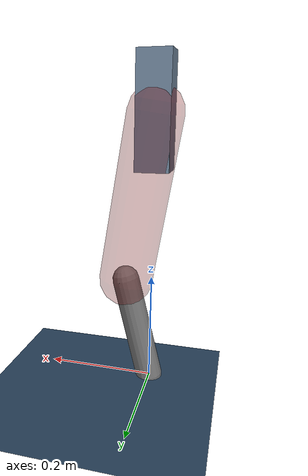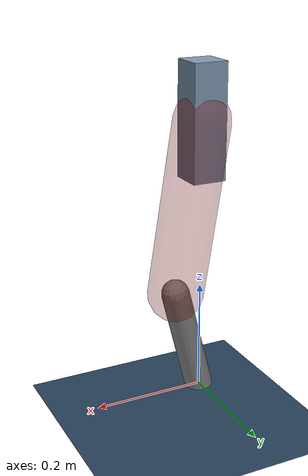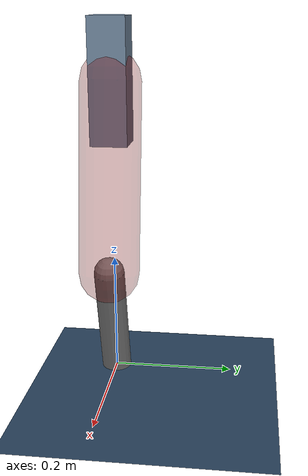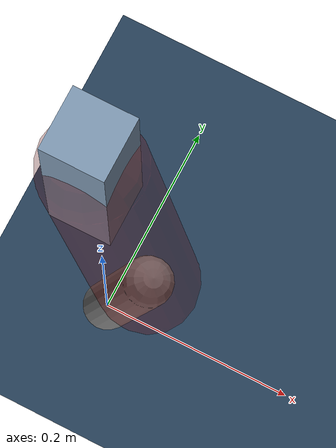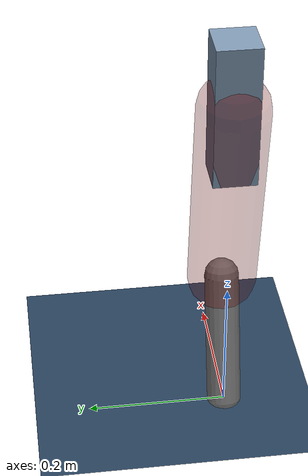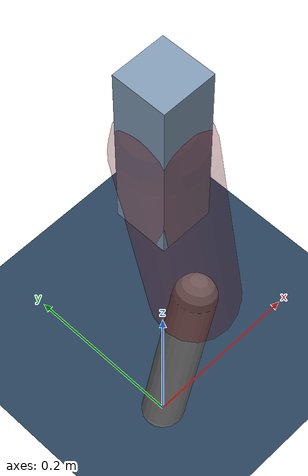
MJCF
<mujoco model="Hopper2D">
	<compiler inertiafromgeom="true" angle="radian" />
	<option timestep="0.001" integrator="implicit" cone="elliptic" solver="Newton" tolerance="1e-10" />

	<default>
		<geom contype="1" conaffinity="1" condim="3" friction="2 0.005 0.0001" solref="0.005 1" />
		<joint limited="true" damping="0.1" />
	</default>

	<asset>
		<texture name="skybox" type="skybox" builtin="gradient" rgb1=".4 .6 .8" rgb2="0 0 0" width="800" height="800" />
		<texture name="grid" type="2d" builtin="checker" rgb1=".1 .2 .3" rgb2=".2 .3 .4" width="300" height="300" mark="edge" markrgb=".2 .3 .4" />
		<material name="ground" texture="grid" texrepeat="1 1" texuniform="true" reflectance="0.1" />
		<material name="leg" rgba="0.5 0.6 0.7 1" />
	</asset>

	<worldbody>

		<geom name="floor" type="plane" size="5 5 0.25" material="ground" />

		<light directional="false" diffuse="0.8 0.8 0.8" specular="0.3 0.3 0.3" pos="0 0 2" dir="0 0 -1" />
		<light mode="targetbodycom" target="base" directional="false" diffuse="0.8 0.8 0.8" specular="0.3 0.3 0.3" pos="0 0 2" dir="0 0 -1" />

		<camera name="fixed" pos="0 -2 1" xyaxes="1 0 0 0 0 1" />
		<camera name="tracking" mode="trackcom" pos="0 -3 1" />

		<body name="root" pos="0 0 0.4968832746365417">
			<joint name="slide_x" type="slide" axis="1 0 0" range="-100 100" />
			<joint name="slide_z" type="slide" axis="0 0 1" range="0 10" />

			<body name="base" pos="0 0 0">
				<geom name="torso" type="box" size="0.03 0.03 0.1" mass="2.208" material="leg" />

				<body name="link1" pos="0 0 0" euler="0 1.411559257589996 0">
					<joint type="hinge" axis="0 -1 0" pos="0 0 0" name="hinge1" limited="true" range="-3.14 3.14" stiffness="0" damping="0.1" />
					<geom name="thigh" type="capsule" fromto="0 0 0 0.30816292410108015 0 0" size="0.05" rgba="0.5 0 0 0.3" mass="1.0108561874830244" />

					<body name="link2" pos="0.30816292410108015 0 0" euler="0 0.4076774367299568 0">
						<joint type="hinge" axis="0 -1 0" pos="0 0 0" name="hinge2" limited="true" range="-3.14 3.14" stiffness="0" damping="0.1" />
						<geom name="shank" type="capsule" fromto="0 0 0 0.19872035053546158 0 0" size="0.025" mass="0.3998483154819154" />

					</body>
				</body>
			</body>
		</body>
	</worldbody>

	<actuator>
		<motor name="torque1" joint="hinge1" ctrlrange="-62.1440565602496 62.1440565602496" ctrllimited="true" gear="1" />
		<motor name="torque2" joint="hinge2" ctrlrange="-98.984915013655 98.984915013655" ctrllimited="true" gear="1" />
	</actuator>
</mujoco>
